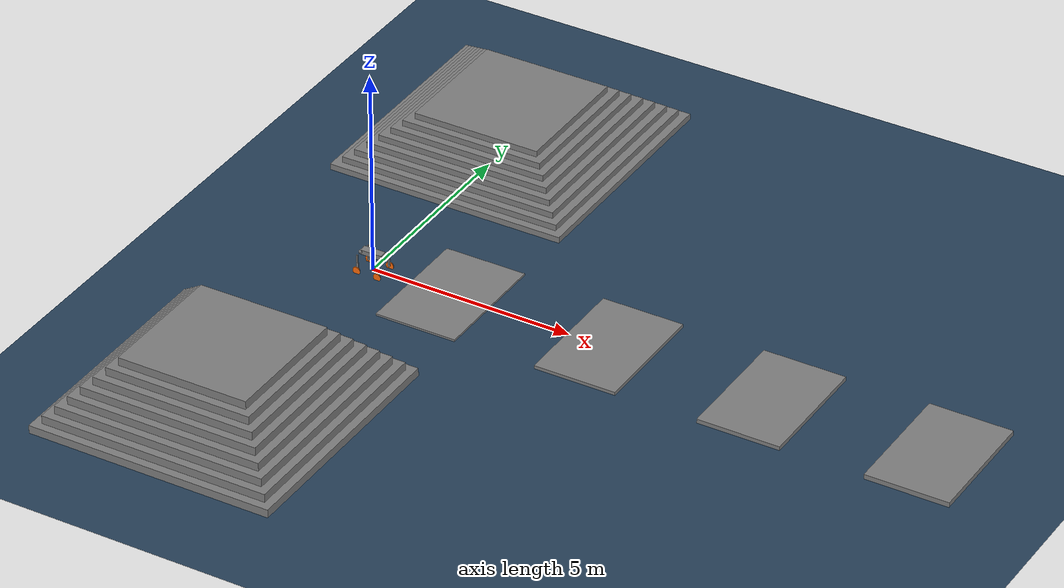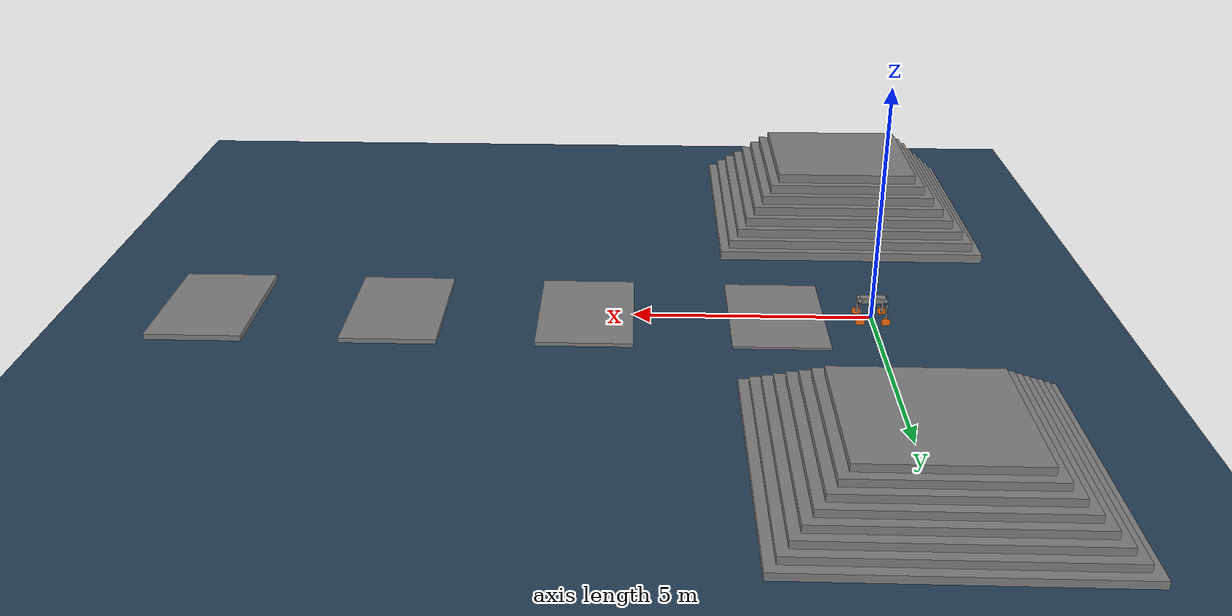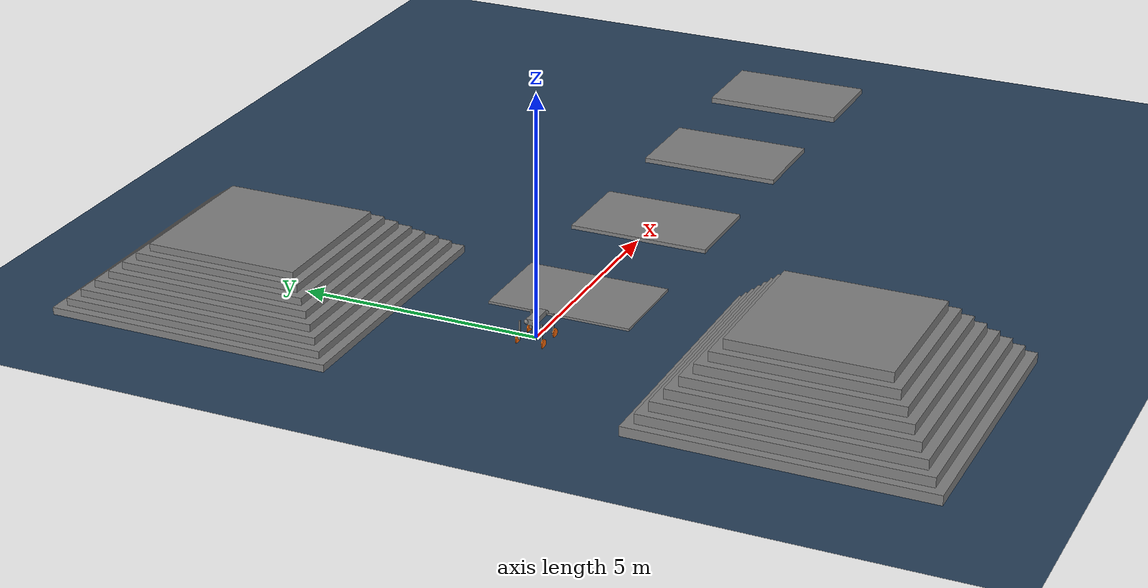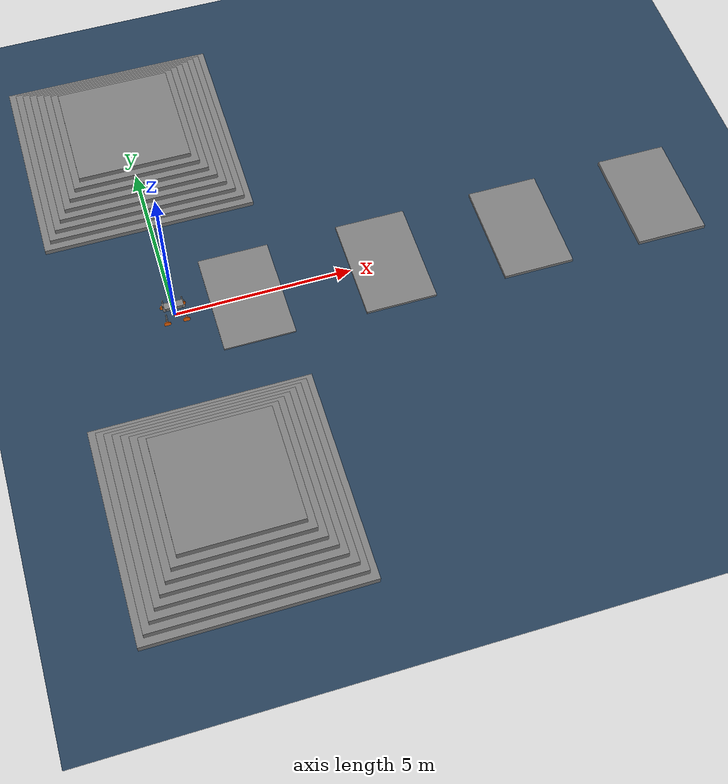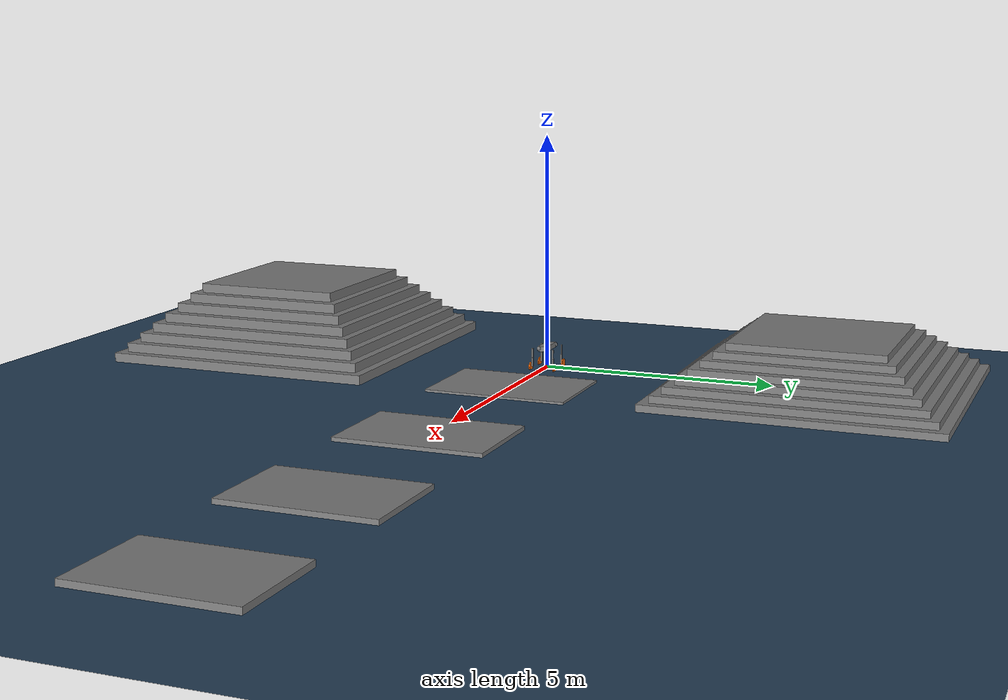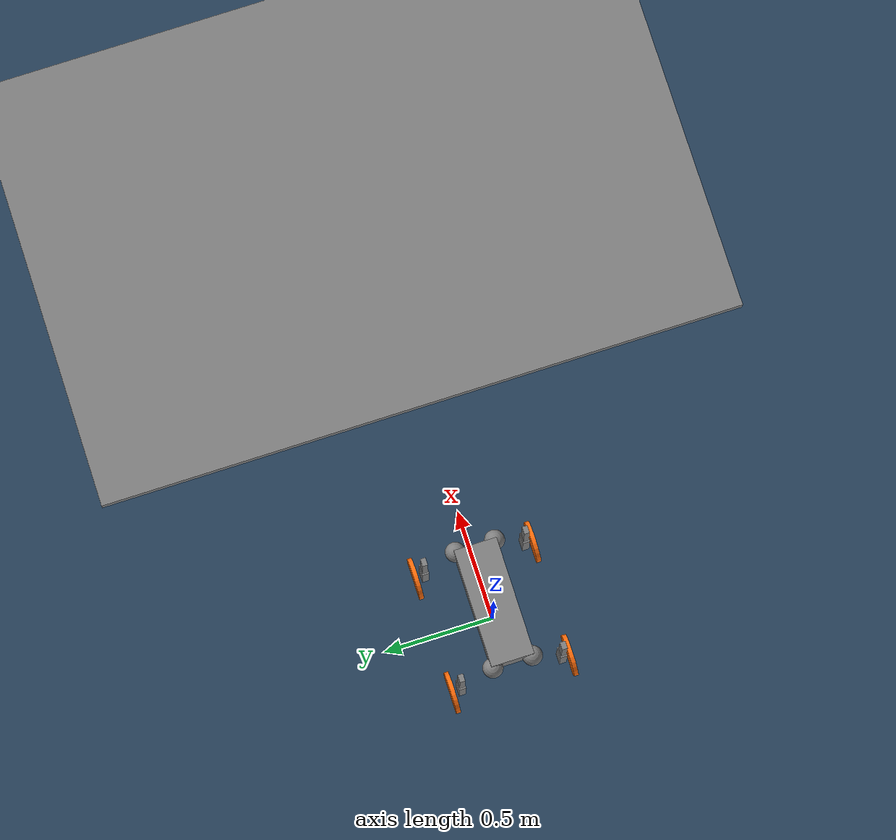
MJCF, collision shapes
<mujoco model="wheeled titatit terrain scene">
  <include file="wheeled_titatit_rl.xml"/>
  <statistic center="0 0 0.1" extent="0.8"/>

  <visual>
    <headlight diffuse="0.6 0.6 0.6" ambient="0.3 0.3 0.3" specular="0 0 0"/>
    <rgba haze="0.15 0.25 0.35 1"/>
    <global azimuth="-130" elevation="-20"/>
  </visual>

  <asset>
    <texture type="skybox" builtin="gradient"
             rgb1="0.3 0.5 0.7" rgb2="0 0 0"
             width="512" height="3072"/>

    <texture type="2d" name="groundplane"
             builtin="checker" mark="edge"
             rgb1="0.2 0.3 0.4" rgb2="0.1 0.2 0.3"
             markrgb="0.8 0.8 0.8"
             width="300" height="300"/>

    <material name="groundplane"
              texture="groundplane"
              texuniform="true"
              texrepeat="5 5"
              reflectance="0.2"/>
  </asset>

  <worldbody>
    <light pos="0 0 1.5" dir="0 0 -1" directional="true"/>
    <geom name="floor" type="plane" size="0 0 0.05" material="groundplane" friction="2 0.02 0.002"/>

    <body name="climb_test" pos="0 0 0">
        <!-- MuJoCo box size is half-extents: pos_z=size_z gives a ground-supported platform of height 2*size_z. -->
        <geom name="climb_05cm" pos="2.0 0 0.025" type="box" size="1.0 1.5 0.025" friction="1.2 0.02 0.002"/>
        <geom name="climb_08cm" pos="6.0 0 0.040" type="box" size="1.0 1.5 0.040" friction="1.2 0.02 0.002"/>
        <geom name="climb_10cm" pos="10.0 0 0.050" type="box" size="1.0 1.5 0.050" friction="1.2 0.02 0.002"/>
        <geom name="climb_12cm" pos="14.0 0 0.060" type="box" size="1.0 1.5 0.060" friction="1.2 0.02 0.002"/>
    </body>

    <body name="stairs_15x20" pos="0.0 6.0 0.0">
        <geom name="step_15x20_1" type="box" size="3.0 3.0 0.075" pos="0.0 0.0 0.075" friction="2 0.02 0.002" />
        <geom name="step_15x20_2" type="box" size="2.8 2.8 0.075" pos="0.0 0.0 0.225" friction="2 0.02 0.002" />
        <geom name="step_15x20_3" type="box" size="2.6 2.6 0.075" pos="0.0 0.0 0.375" friction="2 0.02 0.002" />
        <geom name="step_15x20_4" type="box" size="2.4 2.4 0.075" pos="0.0 0.0 0.525" friction="2 0.02 0.002" />
        <geom name="step_15x20_5" type="box" size="2.2 2.2 0.075" pos="0.0 0.0 0.675" friction="2 0.02 0.002" />
        <geom name="step_15x20_6" type="box" size="2.0 2.0 0.075" pos="0.0 0.0 0.825" friction="2 0.02 0.002" />
        <geom name="step_15x20_7" type="box" size="1.8 1.8 0.075" pos="0.0 0.0 0.975" friction="2 0.02 0.002" />
        <geom name="step_15x20_8" type="box" size="1.6 1.6 0.075" pos="0.0 0.0 1.125" friction="2 0.02 0.002" />
    </body>

    <body name="stairs_20x20" pos="0.0 -6.0 0.0">
        <geom name="step_20x20_1" type="box" size="3.0 3.0 0.1" pos="0.0 0.0 0.1" friction="2 0.02 0.002" />
        <geom name="step_20x20_2" type="box" size="2.8 2.8 0.1" pos="0.0 0.0 0.3" friction="2 0.02 0.002" />
        <geom name="step_20x20_3" type="box" size="2.6 2.6 0.1" pos="0.0 0.0 0.5" friction="2 0.02 0.002" />
        <geom name="step_20x20_4" type="box" size="2.4 2.4 0.1" pos="0.0 0.0 0.7" friction="2 0.02 0.002" />
        <geom name="step_20x20_5" type="box" size="2.2 2.2 0.1" pos="0.0 0.0 0.9" friction="2 0.02 0.002" />
        <geom name="step_20x20_6" type="box" size="2.0 2.0 0.1" pos="0.0 0.0 1.1" friction="2 0.02 0.002" />
        <geom name="step_20x20_7" type="box" size="1.8 1.8 0.1" pos="0.0 0.0 1.3" friction="2 0.02 0.002" />
        <geom name="step_20x20_8" type="box" size="1.6 1.6 0.1" pos="0.0 0.0 1.5" friction="2 0.02 0.002" />
    </body>

  </worldbody>
</mujoco>

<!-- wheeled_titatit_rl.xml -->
<mujoco model="wheeled_titatit">
  <compiler angle="radian" autolimits="true" meshdir="../meshes"/>
  <option cone="elliptic" impratio="100"/>

  <default>
    <geom condim="3" friction="1.2 0.005 0.0001" margin="0.01" solref="0.01 1" solimp="0.90 0.95 0.001"/>
    <joint damping="0" frictionloss="0" armature="0"/>
  </default>

  <asset>
    <material name="grey" rgba="0.75294 0.75294 0.75294 1"/>
    <material name="orange" rgba="1.0 0.4235 0.0392 1.0"/>

    <!-- STL mesh 文件 -->
    <mesh name="base" file="base.STL"/>
    <mesh name="FR_hip" file="FR_hip.STL"/>
    <mesh name="FR_thigh" file="FR_thigh.STL"/>
    <mesh name="FR_calf" file="FR_calf.STL"/>
    <mesh name="FR_foot" file="FR_foot.STL"/>
    <mesh name="FL_hip" file="FL_hip.STL"/>
    <mesh name="FL_thigh" file="FL_thigh.STL"/>
    <mesh name="FL_calf" file="FL_calf.STL"/>
    <mesh name="FL_foot" file="FL_foot.STL"/>
    <mesh name="RR_hip" file="RR_hip.STL"/>
    <mesh name="RR_thigh" file="RR_thigh.STL"/>
    <mesh name="RR_calf" file="RR_calf.STL"/>
    <mesh name="RR_foot" file="RR_foot.STL"/>
    <mesh name="RL_hip" file="RL_hip.STL"/>
    <mesh name="RL_thigh" file="RL_thigh.STL"/>
    <mesh name="RL_calf" file="RL_calf.STL"/>
    <mesh name="RL_foot" file="RL_foot.STL"/>
    <mesh name="FL_battery" file="FL_battery.STL"/>
    <mesh name="FR_battery" file="FR_battery.STL"/>
    <mesh name="RL_battery" file="RL_battery.STL"/>
    <mesh name="RR_battery" file="RR_battery.STL"/>
  </asset>

  <worldbody>
    <light pos="0 0 3" dir="0 0 -1" directional="true"/>
    <body name="base" pos="0 0 0.44">
      <inertial pos="0.00610416 -0.00013472 0.03915073" mass="27.81177332" fullinertia="0.33505891 0.51538714 0.39690016 0.00083495 -0.09078959 0.00152686"/>
      <freejoint/>
      <site name="trunk_imu" size="0.01"/>
      <!-- Training randomizes camera pitch in [15, 25] deg down; use the midpoint for sim2sim. -->
      <camera name="depth_camera" pos="0.537 -0.004 0.239" xyaxes="0 -1 0 0.342 0 0.940" fovy="58"/>
      <!-- 视觉 mesh (仅渲染, 不参与碰撞) -->
      <geom type="mesh" mesh="base" material="grey" group="1" contype="0" conaffinity="0"/>
      <!-- 碰撞简化体 -->
      <geom size="0.266 0.097 0.057" type="box" contype="1" conaffinity="1" density="0"/>

      <!-- FR leg -->
      <body name="FR_hip" pos="0.26556 -0.0895 0">
        <inertial pos="0.00160252 -5.02529e-05 0.000638012" quat="0.999804 0.00104431 -0.0197557 9.54749e-05" mass="2.06397" diaginertia="0.00430756 0.0029982 0.00226716"/>
        <joint name="FR_hip_joint" axis="1 0 0" range="-0.802851 0.802851" actuatorfrcrange="-55 55"/>
        <!-- 视觉 mesh (仅渲染, 不参与碰撞) -->
        <geom type="mesh" mesh="FR_hip" material="grey" group="1" quat="0.5 0.5 -0.5 -0.5" contype="0" conaffinity="0"/>
        <!-- 碰撞简化体 -->
        <geom size="0.045" type="sphere" contype="1" conaffinity="1" density="0"/>
        <body name="FR_thigh" pos="0 -0.1426 0">
          <inertial pos="0.0198087 -0.000674483 -0.0280301" quat="0.00924299 0.711846 -0.0115591 0.70218" mass="3.08319" diaginertia="0.00882828 0.00650388 0.00294907"/>
          <joint name="FR_thigh_joint" axis="0 1 0" range="-1.0472 4.18879" actuatorfrcrange="-55 55"/>
          <!-- 视觉 mesh (仅渲染, 不参与碰撞) -->
          <geom type="mesh" mesh="FR_thigh" material="grey" group="1" quat="0.5 0.5 0.5 -0.5" contype="0" conaffinity="0"/>
          <!-- 碰撞简化体 -->
          <geom size="0.1 0.01225 0.017" pos="0 0 -0.1" quat="0.707107 0 0.707107 0" type="box" contype="1" conaffinity="1" density="0"/>
          <body name="FR_calf" pos="0 0 -0.2">
            <inertial pos="0.00183801 -0.0116984 -0.0953485" quat="0.997993 -0.0599704 0.0191198 0.00689675" mass="0.572443" diaginertia="0.00342535 0.00324383 0.00025855"/>
            <joint name="FR_calf_joint" axis="0 1 0" range="-2.69653 -0.916298" actuatorfrcrange="-55 55"/>
            <!-- 视觉 mesh (仅渲染, 不参与碰撞) -->
            <geom type="mesh" mesh="FR_calf" material="grey" group="1" quat="0.5 0.5 0.5 -0.5" contype="0" conaffinity="0"/>
            <!-- 碰撞简化体 -->
            <geom size="0.1 0.016 0.024" pos="0 0 -0.1" quat="0.707107 0 0.707107 0" type="box" contype="1" conaffinity="1" density="0"/>
            <body name="FR_foot" pos="0 0 -0.2">
              <inertial pos="0 -0.05 0" quat="0.707107 0 0 0.707107" mass="1.5" diaginertia="0.00674 0.00342 0.00342"/>
              <joint name="FR_foot_joint" axis="0 1 0" range="-1000000 1000000" actuatorfrcrange="-10 10"/>
              <!-- 轮子: cylinder 同时作为视觉和碰撞 (去掉STL mesh避免重叠) -->
              <geom size="0.0948 0.01" pos="0 -0.04 0" quat="0.707105 0.707108 0 0" type="cylinder" material="orange" contype="1" conaffinity="1" density="0"/>
            </body>
          </body>
        </body>
      </body>

      <!-- FL leg -->
      <body name="FL_hip" pos="0.26556 0.0895 0">
        <inertial pos="0.00160252 5.02529e-05 0.000637998" quat="0.999804 -0.00105031 -0.0197557 -9.57276e-05" mass="2.06397" diaginertia="0.00430756 0.0029982 0.00226716"/>
        <joint name="FL_hip_joint" axis="1 0 0" range="-0.802851 0.802851" actuatorfrcrange="-55 55"/>
        <!-- 视觉 mesh (仅渲染, 不参与碰撞) -->
        <geom type="mesh" mesh="FL_hip" material="grey" group="1" quat="0.5 0.5 0.5 0.5" contype="0" conaffinity="0"/>
        <!-- 碰撞简化体 -->
        <geom size="0.045" type="sphere" contype="1" conaffinity="1" density="0"/>
        <body name="FL_thigh" pos="0 0.1426 0">
          <inertial pos="0.0198088 0.000674375 -0.0280301" quat="-0.00924156 0.711846 0.0115573 0.70218" mass="3.08318" diaginertia="0.00882828 0.00650389 0.00294906"/>
          <joint name="FL_thigh_joint" axis="0 1 0" range="-1.0472 4.18879" actuatorfrcrange="-55 55"/>
          <!-- 视觉 mesh (仅渲染, 不参与碰撞) -->
          <geom type="mesh" mesh="FL_thigh" material="grey" group="1" quat="0.5 -0.5 0.5 0.5" contype="0" conaffinity="0"/>
          <!-- 碰撞简化体 -->
          <geom size="0.1 0.01225 0.017" pos="0 0 -0.1" quat="0.707107 0 0.707107 0" type="box" contype="1" conaffinity="1" density="0"/>
          <body name="FL_calf" pos="0 0 -0.2">
            <inertial pos="0.00183801 0.0116984 -0.0953485" quat="0.997993 0.0599704 0.0191198 -0.00689675" mass="0.572443" diaginertia="0.00342535 0.00324383 0.00025855"/>
            <joint name="FL_calf_joint" axis="0 1 0" range="-2.69653 -0.916298" actuatorfrcrange="-55 55"/>
            <!-- 视觉 mesh (仅渲染, 不参与碰撞) -->
            <geom type="mesh" mesh="FL_calf" material="grey" group="1" quat="0.5 -0.5 0.5 0.5" contype="0" conaffinity="0"/>
            <!-- 碰撞简化体 -->
            <geom size="0.1 0.016 0.024" pos="0 0 -0.1" quat="0.707107 0 0.707107 0" type="box" contype="1" conaffinity="1" density="0"/>
            <body name="FL_foot" pos="0 0 -0.2">
              <inertial pos="0 0.05 0" quat="0.707107 0 0 0.707107" mass="1.5" diaginertia="0.00674 0.00342 0.00342"/>
              <joint name="FL_foot_joint" axis="0 1 0" range="-1000000 1000000" actuatorfrcrange="-10 10"/>
              <!-- 轮子: cylinder 同时作为视觉和碰撞 (去掉STL mesh避免重叠) -->
              <geom size="0.0948 0.01" pos="0 0.04 0" quat="0.707105 0.707108 0 0" type="cylinder" material="orange" contype="1" conaffinity="1" density="0"/>
            </body>
          </body>
        </body>
      </body>

      <!-- RR leg -->
      <body name="RR_hip" pos="-0.26519 -0.0895 -0.0002">
        <inertial pos="-0.00160252 -5.02529e-05 0.000638012" quat="0.999804 0.00104431 0.0197557 -9.54749e-05" mass="2.06397" diaginertia="0.00430756 0.0029982 0.00226716"/>
        <joint name="RR_hip_joint" axis="1 0 0" range="-0.802851 0.802851" actuatorfrcrange="-55 55"/>
        <!-- 视觉 mesh (仅渲染, 不参与碰撞) -->
        <geom type="mesh" mesh="RR_hip" material="grey" group="1" quat="0.5 0.5 -0.5 -0.5" contype="0" conaffinity="0"/>
        <!-- 碰撞简化体 -->
        <geom size="0.045" type="sphere" contype="1" conaffinity="1" density="0"/>
        <body name="RR_thigh" pos="0 -0.1426 0">
          <inertial pos="-0.0198087 -0.000674483 -0.0280301" quat="-0.0115591 0.70218 0.00924299 0.711846" mass="3.08319" diaginertia="0.00882828 0.00650388 0.00294907"/>
          <joint name="RR_thigh_joint" axis="0 1 0" range="-4.18879 1.0472" actuatorfrcrange="-55 55"/>
          <!-- 视觉 mesh (仅渲染, 不参与碰撞) -->
          <geom type="mesh" mesh="RR_thigh" material="grey" group="1" quat="0.5 0.5 0.5 -0.5" contype="0" conaffinity="0"/>
          <!-- 碰撞简化体 -->
          <geom size="0.1 0.01225 0.017" pos="0 0 -0.1" quat="0.707107 0 0.707107 0" type="box" contype="1" conaffinity="1" density="0"/>
          <body name="RR_calf" pos="0 0 -0.2">
            <inertial pos="-0.00183801 -0.0116984 -0.0953485" quat="0.997993 -0.0599704 -0.0191198 -0.00689675" mass="0.572443" diaginertia="0.00342535 0.00324383 0.00025855"/>
            <joint name="RR_calf_joint" axis="0 1 0" range="-0.916298 2.69653" actuatorfrcrange="-55 55"/>
            <!-- 视觉 mesh (仅渲染, 不参与碰撞) -->
            <geom type="mesh" mesh="RR_calf" material="grey" group="1" quat="0.5 0.5 0.5 -0.5" contype="0" conaffinity="0"/>
            <!-- 碰撞简化体 -->
            <geom size="0.1 0.016 0.024" pos="0 0 -0.1" quat="0.707107 0 0.707107 0" type="box" contype="1" conaffinity="1" density="0"/>
            <body name="RR_foot" pos="0 0 -0.2">
              <inertial pos="0 -0.05 0" quat="0.707107 0 0 0.707107" mass="1.5" diaginertia="0.00674 0.00342 0.00342"/>
              <joint name="RR_foot_joint" axis="0 1 0" range="-1000000 1000000" actuatorfrcrange="-10 10"/>
              <!-- 轮子: cylinder 同时作为视觉和碰撞 (去掉STL mesh避免重叠) -->
              <geom size="0.0948 0.01" pos="0 -0.04 0" quat="0.707105 0.707108 0 0" type="cylinder" material="orange" contype="1" conaffinity="1" density="0"/>
            </body>
          </body>
        </body>
      </body>

      <!-- RL leg -->
      <body name="RL_hip" pos="-0.26556 0.0895 0">
        <inertial pos="-0.00160252 5.02529e-05 0.000637998" quat="0.999804 -0.00105031 0.0197557 9.57276e-05" mass="2.06397" diaginertia="0.00430756 0.0029982 0.00226716"/>
        <joint name="RL_hip_joint" axis="1 0 0" range="-0.802851 0.802851" actuatorfrcrange="-55 55"/>
        <!-- 视觉 mesh (仅渲染, 不参与碰撞) -->
        <geom type="mesh" mesh="RL_hip" material="grey" group="1" quat="0.5 0.5 0.5 0.5" contype="0" conaffinity="0"/>
        <!-- 碰撞简化体 -->
        <geom size="0.045" type="sphere" contype="1" conaffinity="1" density="0"/>
        <body name="RL_thigh" pos="0 0.1426 0">
          <inertial pos="-0.0198088 0.000674375 -0.0280301" quat="0.0115573 0.70218 -0.00924156 0.711846" mass="3.08318" diaginertia="0.00882828 0.00650389 0.00294906"/>
          <joint name="RL_thigh_joint" axis="0 1 0" range="-4.18879 1.0472" actuatorfrcrange="-55 55"/>
          <!-- 视觉 mesh (仅渲染, 不参与碰撞) -->
          <geom type="mesh" mesh="RL_thigh" material="grey" group="1" quat="0.5 -0.5 0.5 0.5" contype="0" conaffinity="0"/>
          <!-- 碰撞简化体 -->
          <geom size="0.1 0.01225 0.017" pos="0 0 -0.1" quat="0.707107 0 0.707107 0" type="box" contype="1" conaffinity="1" density="0"/>
          <body name="RL_calf" pos="0 0 -0.2">
            <inertial pos="-0.00183801 0.0116984 -0.0953485" quat="0.997993 0.0599704 -0.0191198 0.00689675" mass="0.572443" diaginertia="0.00342535 0.00324383 0.00025855"/>
            <joint name="RL_calf_joint" axis="0 1 0" range="0.916298 2.69653" actuatorfrcrange="-55 55"/>
            <!-- 视觉 mesh (仅渲染, 不参与碰撞) -->
            <geom type="mesh" mesh="RL_calf" material="grey" group="1" quat="0.5 -0.5 0.5 0.5" contype="0" conaffinity="0"/>
            <!-- 碰撞简化体 -->
            <geom size="0.1 0.016 0.024" pos="0 0 -0.1" quat="0.707107 0 0.707107 0" type="box" contype="1" conaffinity="1" density="0"/>
            <body name="RL_foot" pos="0 0 -0.2">
              <inertial pos="0 0.05 0" quat="0.707107 0 0 0.707107" mass="1.5" diaginertia="0.00674 0.00342 0.00342"/>
              <joint name="RL_foot_joint" axis="0 1 0" range="-1000000 1000000" actuatorfrcrange="-10 10"/>
              <!-- 轮子: cylinder 同时作为视觉和碰撞 (去掉STL mesh避免重叠) -->
              <geom size="0.0948 0.01" pos="0 0.04 0" quat="0.707105 0.707108 0 0" type="cylinder" material="orange" contype="1" conaffinity="1" density="0"/>
            </body>
          </body>
        </body>
      </body>
    </body>
  </worldbody>

  <actuator>
    <motor name="FR_hip" joint="FR_hip_joint" ctrllimited="true" ctrlrange="-55 55"/>
    <motor name="FR_thigh" joint="FR_thigh_joint" ctrllimited="true" ctrlrange="-55 55"/>
    <motor name="FR_calf" joint="FR_calf_joint" ctrllimited="true" ctrlrange="-55 55"/>
    <motor name="FR_foot" joint="FR_foot_joint" ctrllimited="true" ctrlrange="-10 10"/>
    <motor name="FL_hip" joint="FL_hip_joint" ctrllimited="true" ctrlrange="-55 55"/>
    <motor name="FL_thigh" joint="FL_thigh_joint" ctrllimited="true" ctrlrange="-55 55"/>
    <motor name="FL_calf" joint="FL_calf_joint" ctrllimited="true" ctrlrange="-55 55"/>
    <motor name="FL_foot" joint="FL_foot_joint" ctrllimited="true" ctrlrange="-10 10"/>
    <motor name="RR_hip" joint="RR_hip_joint" ctrllimited="true" ctrlrange="-55 55"/>
    <motor name="RR_thigh" joint="RR_thigh_joint" ctrllimited="true" ctrlrange="-55 55"/>
    <motor name="RR_calf" joint="RR_calf_joint" ctrllimited="true" ctrlrange="-55 55"/>
    <motor name="RR_foot" joint="RR_foot_joint" ctrllimited="true" ctrlrange="-10 10"/>
    <motor name="RL_hip" joint="RL_hip_joint" ctrllimited="true" ctrlrange="-55 55"/>
    <motor name="RL_thigh" joint="RL_thigh_joint" ctrllimited="true" ctrlrange="-55 55"/>
    <motor name="RL_calf" joint="RL_calf_joint" ctrllimited="true" ctrlrange="-55 55"/>
    <motor name="RL_foot" joint="RL_foot_joint" ctrllimited="true" ctrlrange="-10 10"/>
  </actuator>

  <sensor>
    <framequat name="trunk_quat" objtype="site" objname="trunk_imu"/>
    <gyro name="trunk_gyro" site="trunk_imu"/>
    <accelerometer name="trunk_accel" site="trunk_imu"/>
    <framepos name="frame_pos" objtype="site" objname="trunk_imu"/>
    <framelinvel name="frame_vel" objtype="site" objname="trunk_imu"/>
  </sensor>
</mujoco>
